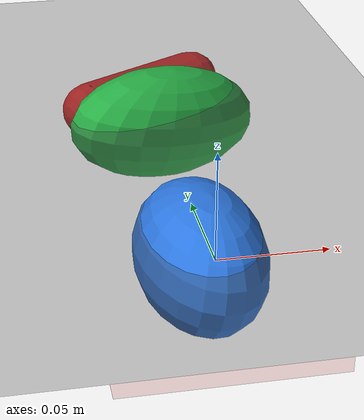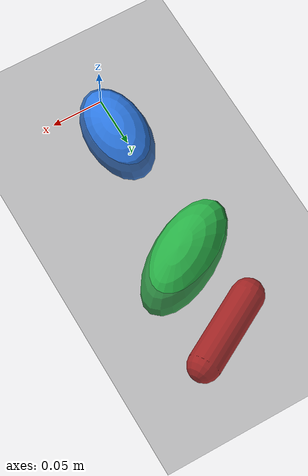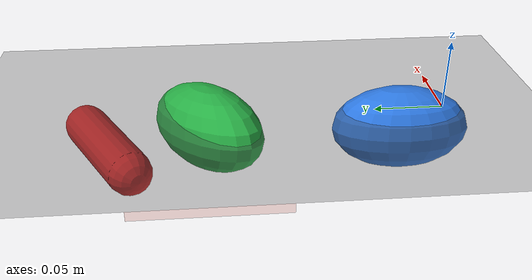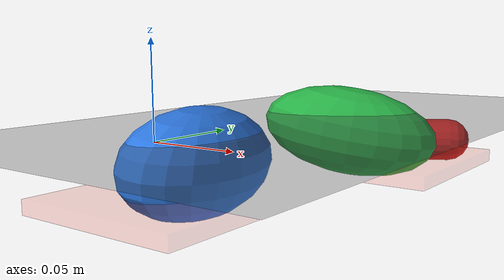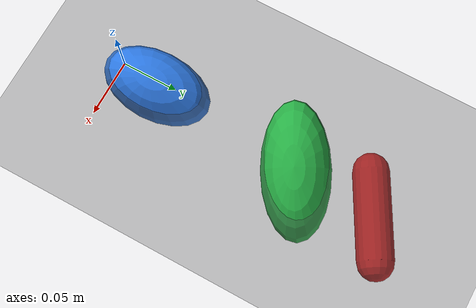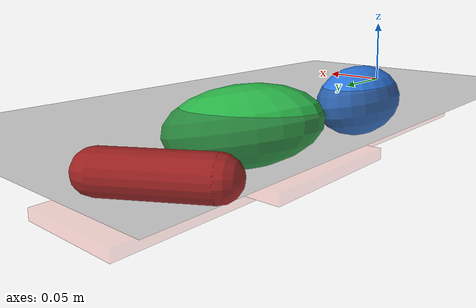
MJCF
<mujoco model="elipsoid_feet">
  <compiler angle="radian" coordinate="local" />

  <option
        timestep="0.001"
        integrator="implicitfast"
        solver="Newton"
        cone="elliptic"
        impratio="10"
        iterations="80"
        tolerance="1e-10"
        noslip_iterations="2"
    >
    <flag nativeccd="enable" multiccd="enable" />
  </option>

  <default>
    <joint damping="0.12" armature="0.0005" />

    <geom solref="0.012 1" solimp="0.90 0.98 0.0015 0.5 2" margin="0.0005" />

    <default class="foot_contact">
      <geom
                type="ellipsoid"
                condim="6"
                contype="1"
                conaffinity="2"
                friction="1.0 0.03 0.002"
                rgba="0.10 0.45 0.85 0.88"
            />
    </default>

    <default class="touch_site">
      <site type="box" rgba="0.9 0.2 0.1 0.18" />
    </default>
  </default>

  <worldbody>
    <light name="key" pos="0 -1.2 1.5" dir="0 1 -1" diffuse="0.8 0.8 0.8" />

    <geom
            name="floor"
            type="plane"
            size="2.0 1.0 0.05"
            condim="6"
            contype="2"
            conaffinity="1"
            friction="1.0 0.03 0.002"
            rgba="0.25 0.25 0.25 1"
        />

    <body name="foot_segment" pos="0 0 0">
      <freejoint name="foot_free" />
      <inertial
                pos="0.010 0 0.028"
                mass="0.55"
                diaginertia="0.0012 0.0026 0.0021"
            />

      <!-- Foot-segment ellipsoid 1: heel contact.
           Table 3: a,b,c = 30,50,30 mm; r = 0,30,-15 mm;
           alpha,beta,gamma = 0,0.15,0 rad. -->
      <geom
                name="heel_ellipsoid"
                class="foot_contact"
                pos="0.000 0.030 -0.015"
                quat="0.9971888 0.0000000 0.0749297 0.0000000"
                size="0.030 0.050 0.030"
                rgba="0.18 0.48 0.90 0.90"
            />

      <!-- Foot-segment ellipsoid 2: ball/metatarsal-head contact.
           Table 3: a,b,c = 60,30,30 mm; r = 10,170,-13 mm;
           alpha,beta,gamma = 0,0.2,0.5 rad. -->
      <geom
                name="ball_ellipsoid"
                class="foot_contact"
                pos="0.010 0.170 -0.01366"
                quat="0.9640719 0.0246992 0.0967298 0.2461680"
                size="0.060 0.030 0.030"
                rgba="0.16 0.70 0.28 0.90"
            />

      <site
                name="heel_touch"
                class="touch_site"
                pos="0.000 0.030 -0.031"
                size="0.050 0.070 0.004"
            />
      <site
                name="ball_touch"
                class="touch_site"
                pos="0.010 0.170 -0.031"
                size="0.080 0.055 0.004"
            />

      <body name="toe_segment" pos="0.000 0.200 -0.014">
        <joint
                    name="toe_hinge"
                    type="hinge"
                    axis="1 0 0"
                    range="-0.8 0.7"
                    limited="true"
                    damping="0.18"
                    armature="0.0004"
                />
        <inertial
                    pos="0.000 0.050 0.002"
                    mass="0.12"
                    diaginertia="0.00018 0.00045 0.00038"
                />

        <!-- Toe contact: capsule pulled slightly anterior from the midfoot and
             kept parallel to the ground for a longer toe contact patch. -->
        <geom
                    name="toe_capsule"
                    class="foot_contact"
                    type="capsule"
                    fromto="-0.024 0.025 -0.015  0.044 0.063 -0.015"
                    size="0.016"
                    rgba="0.82 0.12 0.12 0.90"
                />

        <site
                    name="toe_touch"
                    class="touch_site"
                    pos="0.010 0.044 -0.031"
                    size="0.040 0.060 0.004"
                />
      </body>
    </body>
  </worldbody>

  <contact>
    <pair
            name="floor_heel_ellipsoid"
            geom1="floor"
            geom2="heel_ellipsoid"
            condim="6"
            friction="1.0 0.9 0.030 0.002 0.002"
            solref="0.012 1"
            solimp="0.90 0.98 0.0015 0.5 2"
        />
    <pair
            name="floor_ball_ellipsoid"
            geom1="floor"
            geom2="ball_ellipsoid"
            condim="6"
            friction="1.1 0.95 0.030 0.002 0.002"
            solref="0.011 1"
            solimp="0.90 0.98 0.0015 0.5 2"
        />
    <pair
            name="floor_toe_capsule"
            geom1="floor"
            geom2="toe_capsule"
            condim="6"
            friction="1.2 1.0 0.030 0.002 0.002"
            solref="0.010 1"
            solimp="0.92 0.99 0.0015 0.5 2"
        />
  </contact>

  <sensor>
    <touch name="heel_force" site="heel_touch" />
    <touch name="ball_force" site="ball_touch" />
    <touch name="toe_force" site="toe_touch" />
  </sensor>

  <keyframe>
    <!-- qpos: free root xyz + root quat, then toe hinge angle. -->
    <key name="rest_pose" qpos="0 0 0.030 1 0 0 0  0.0" />

    <key
            name="heel_strike"
            qpos="0 -0.020 0.034 0.9961947 0.0871557 0 0  0.0"
        />

    <key
            name="forefoot_loading"
            qpos="0 0.020 0.034 0.9945219 -0.1045285 0 0  -0.25"
        />

    <key name="toe_off" qpos="0 0.045 0.040 0.9848078 -0.1736482 0 0  -0.42" />

    <key name="inside_tilt" qpos="0 0 0.032 0.9961947 0 -0.0871557 0  0.0" />

    <key name="outside_tilt" qpos="0 0 0.032 0.9961947 0 0.0871557 0  0.0" />
  </keyframe>
</mujoco>
